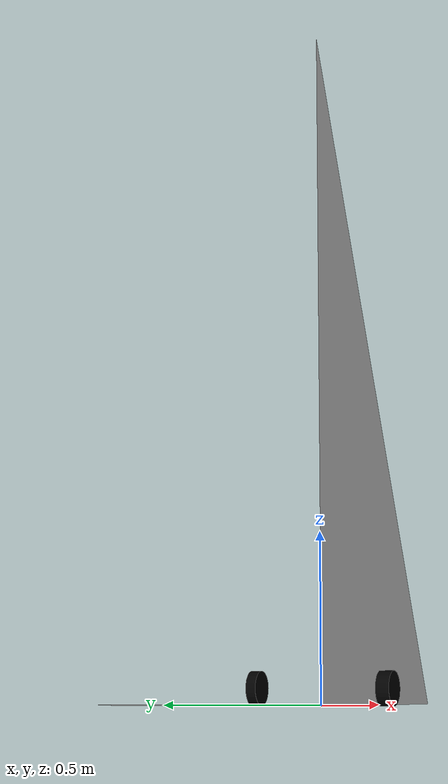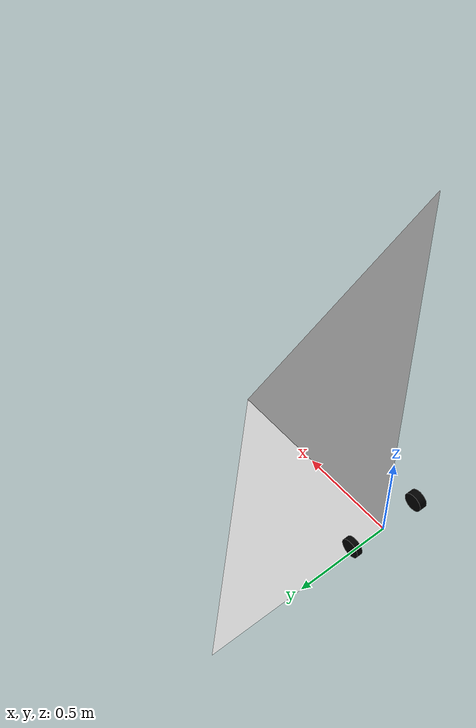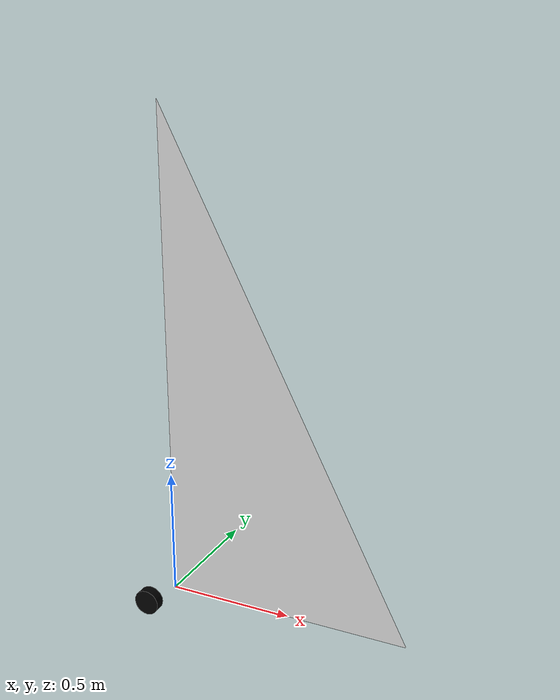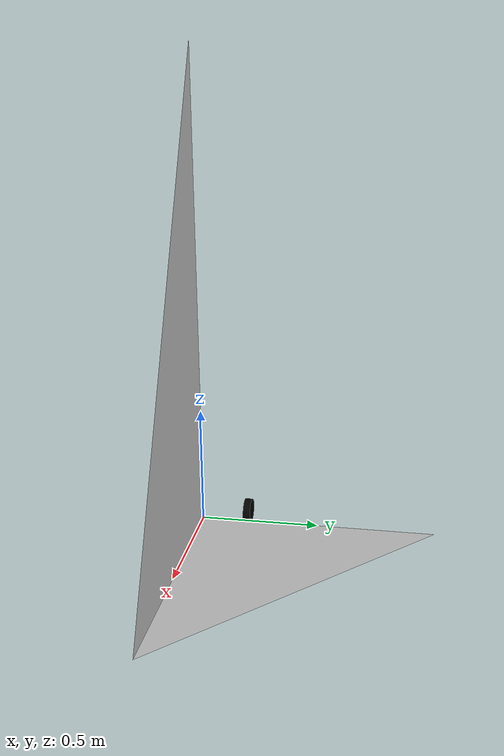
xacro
<?xml version="1.0"?>
<!-- Entry file shaped like a real robot_description: arguments, a find-based include, an env-selected model include, one macro call. -->
<robot xmlns:xacro="http://www.ros.org/wiki/xacro" name="$(arg robot_name)">
  <xacro:arg name="robot_name" default="fixture" />
  <xacro:include filename="$(find robot_description)/urdf/materials.xacro" />
  <xacro:include filename="$(optenv ROBOT_MODEL demo)_model.xacro" />
  <xacro:robot use_mesh="$(optenv USE_MESH true)" />
</robot>

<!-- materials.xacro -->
<!-- No xacro namespace on purpose: a plain URDF fragment is a valid include. -->
<robot>
  <material name="black">
    <color rgba="0.0 0.0 0.0 1.0" />
  </material>
  <material name="light_grey">
    <color rgba="0.8 0.8 0.8 1.0" />
  </material>
</robot>

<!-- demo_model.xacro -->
<robot xmlns:xacro="http://www.ros.org/wiki/xacro">
  <xacro:macro name="robot" params="use_mesh">
    <xacro:property name="PI" value="3.1415926535897931" />
    <xacro:property name="wheel_radius" value="0.05" />
    <xacro:property name="wheel_tread" value="0.4" />
    <xacro:macro name="drive_wheel" params="suffix offset length:=0.03">
      <link name="${suffix}_wheel_link">
        <inertial>
          <mass value="2.0" />
          <origin xyz="0 0 0" rpy="0 0 0" />
          <inertia ixx="5e-03" ixy="0" ixz="0" iyy="5e-03" iyz="0" izz="1e-02" />
        </inertial>
        <visual>
          <origin xyz="0 ${wheel_tread * offset / 2} ${wheel_radius}" rpy="${PI / 2} 0 0" />
          <geometry>
            <cylinder length="${length}" radius="${wheel_radius}" />
          </geometry>
          <material name="black" />
        </visual>
      </link>
      <joint name="${suffix}_wheel_joint" type="continuous">
        <parent link="base_link" />
        <child link="${suffix}_wheel_link" />
        <axis xyz="0 1 0" />
      </joint>
    </xacro:macro>
    <link name="base_link">
      <xacro:if value="${use_mesh}">
        <visual>
          <geometry>
            <mesh filename="package://mesh/triangle_ascii.stl" />
          </geometry>
          <material name="light_grey" />
        </visual>
      </xacro:if>
      <xacro:unless value="${use_mesh}">
        <visual>
          <geometry>
            <box size="0.7 0.53 0.07" />
          </geometry>
          <material name="light_grey" />
        </visual>
      </xacro:unless>
    </link>
    <xacro:drive_wheel suffix="left" offset="1" />
    <xacro:drive_wheel suffix="right" offset="-1" length="0.04" />
  </xacro:macro>
</robot>
